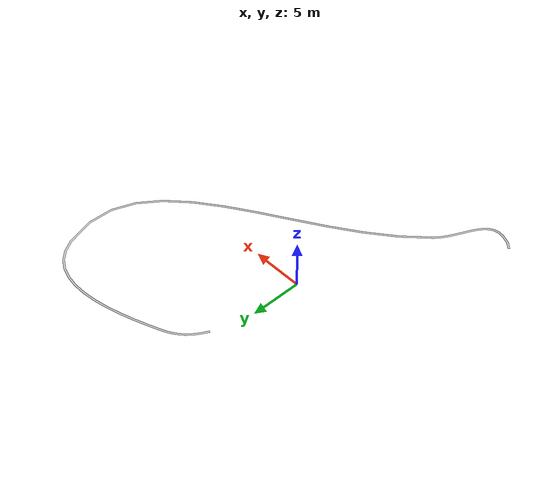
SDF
<?xml version="1.0"?>
<sdf version="1.5">
    <model name="road2_2">
        <static>true</static>
        <link name="link">
            <collision name="collision">
                <pose>0 0 0 0 0 0</pose>
                <geometry>
                    <mesh>
                        <uri>model://road2_2/meshes/road2_2.dae</uri>
                    </mesh>
                </geometry>
            </collision>
            <visual name="visual">
              <pose>0 0 0 0 0 0</pose>
              <geometry>
              <mesh>
                 <uri>model://road2_2/meshes/road2_2.dae</uri>
              </mesh>
              </geometry>
             </visual>
        </link>
    </model>
</sdf>
